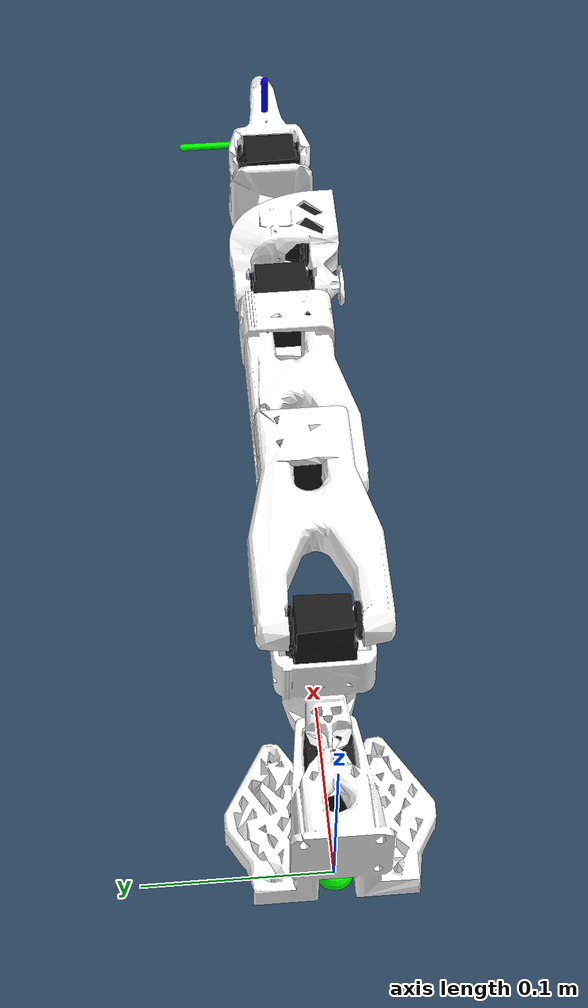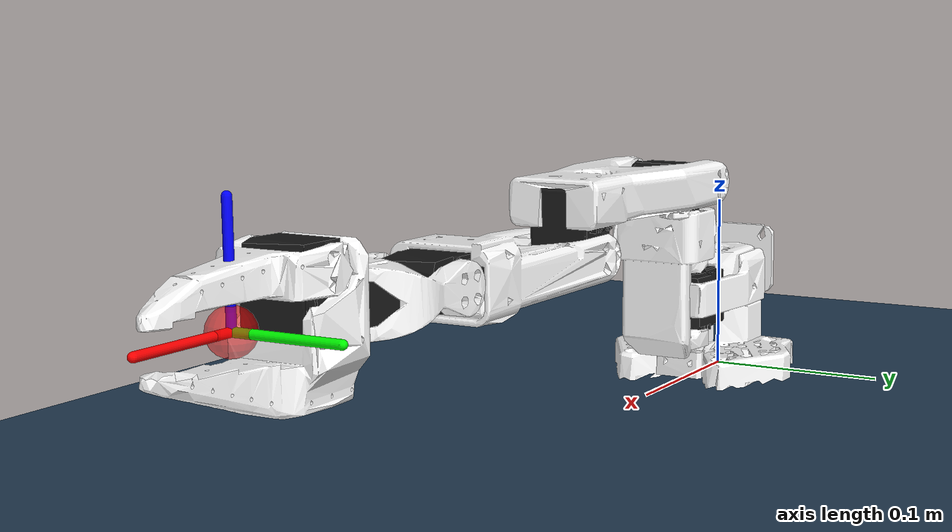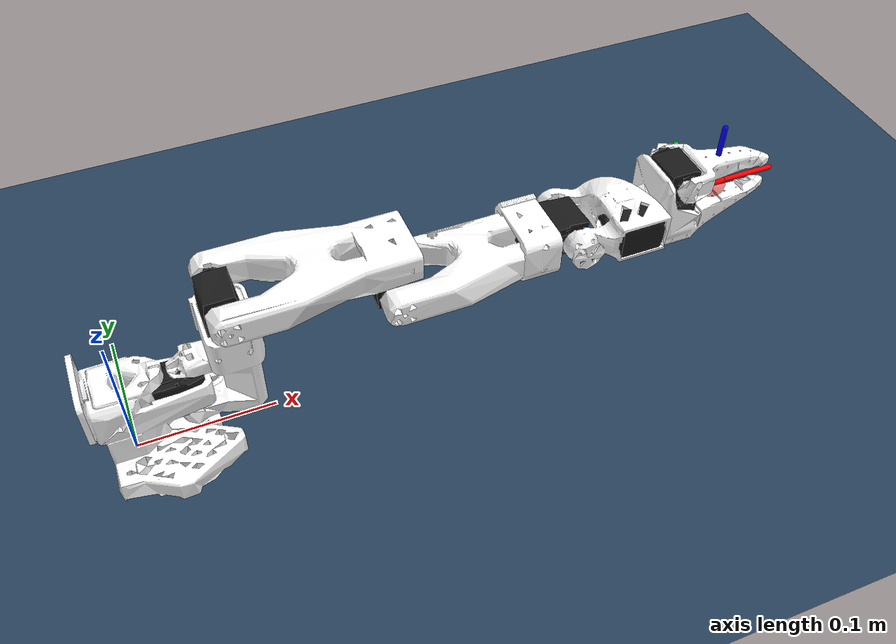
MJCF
<mujoco model="so_arm100 torque_ctrl">
  <option timestep="0.002"/>
  <include file="trs_so_arm100/so_arm100_torque.xml"/>

  <statistic center="0.1 -0.01 0.05" extent="0.5"/>

  <visual>
    <headlight diffuse="0.6 0.6 0.6" ambient="0.3 0.3 0.3" specular="0 0 0"/>
    <rgba haze="0.15 0.25 0.35 1"/>
    <global azimuth="45" elevation="-20"/>
  </visual>

  <asset>
    <texture type="skybox" builtin="gradient" rgb1="0.3 0.5 0.7" rgb2="0 0 0" width="512" height="3072"/>
    <texture type="2d" name="groundplane" builtin="checker" mark="edge" rgb1="0.2 0.3 0.4" rgb2="0.1 0.2 0.3"
      markrgb="0.8 0.8 0.8" width="300" height="300"/>
    <material name="groundplane" texture="groundplane" texuniform="true" texrepeat="5 5" reflectance="0.2"/>
  </asset>

  <worldbody>
    <light pos="0 0 1.5" dir="0 0 -1" directional="true"/>
    <geom name="floor" size="0 0 0.05" type="plane" material="groundplane"/>

    <body name="target" mocap="true">
      <geom type="sphere" size="0.01" rgba="0 1 0 1.0" contype="0" conaffinity="0"/>
    </body>
  </worldbody>
</mujoco>

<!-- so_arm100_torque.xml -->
<mujoco model="so_arm100">
  <compiler angle="radian" meshdir="assets/" />

  <option cone="elliptic" impratio="10" />

  <asset>
    <material name="white" rgba="1 1 1 1" />
    <material name="black" rgba="0.1 0.1 0.1 1" />

    <mesh name="Base" file="Base.stl" />
    <mesh name="Base_Motor" file="Base_Motor.stl" />
    <mesh name="Rotation_Pitch" file="Rotation_Pitch.stl" />
    <mesh name="Rotation_Pitch_Motor" file="Rotation_Pitch_Motor.stl" />
    <mesh name="Upper_Arm" file="Upper_Arm.stl" />
    <mesh name="Upper_Arm_Motor" file="Upper_Arm_Motor.stl" />
    <mesh name="Lower_Arm" file="Lower_Arm.stl" />
    <mesh name="Lower_Arm_Motor" file="Lower_Arm_Motor.stl" />
    <mesh name="Wrist_Pitch_Roll" file="Wrist_Pitch_Roll.stl" />
    <mesh name="Wrist_Pitch_Roll_Motor" file="Wrist_Pitch_Roll_Motor.stl" />
    <mesh name="Fixed_Jaw" file="Fixed_Jaw.stl" />
    <mesh name="Fixed_Jaw_Motor" file="Fixed_Jaw_Motor.stl" />
    <mesh name="Fixed_Jaw_Collision_1" file="Fixed_Jaw_Collision_1.stl" />
    <mesh name="Fixed_Jaw_Collision_2" file="Fixed_Jaw_Collision_2.stl" />
    <mesh name="Moving_Jaw" file="Moving_Jaw.stl" />
    <mesh name="Moving_Jaw_Collision_1" file="Moving_Jaw_Collision_1.stl" />
    <mesh name="Moving_Jaw_Collision_2" file="Moving_Jaw_Collision_2.stl" />
    <mesh name="Moving_Jaw_Collision_3" file="Moving_Jaw_Collision_3.stl" />
  </asset>

  <default>
    <default class="so_arm100">
      <joint frictionloss="0.1" armature="0.1" />
      <position kp="50" dampratio="1" forcerange="-3.5 3.5" />
      <default class="Rotation">
        <joint axis="0 1 0" range="-1.92 1.92" />
      </default>
      <default class="Pitch">
        <joint axis="1 0 0" range="-3.32 0.174" />
      </default>
      <default class="Elbow">
        <joint axis="1 0 0" range="-0.174 3.14" />
      </default>
      <default class="Wrist_Pitch">
        <joint axis="1 0 0" range="-1.66 1.66" />
      </default>
      <default class="Wrist_Roll">
        <joint axis="0 1 0" range="-2.79 2.79" />
      </default>
      <default class="Jaw">
        <joint axis="0 0 1" range="-0.174 1.75" />
      </default>
      <default class="visual">
        <geom type="mesh" contype="0" conaffinity="0" density="0" group="2" material="white" />
        <default class="motor_visual">
          <geom material="black" />
        </default>
      </default>
      <default class="collision">
        <geom group="3" type="mesh" material="white" />
        <default class="finger_collision">
          <geom type="box" solimp="2 1 0.01" solref="0.01 1" friction="1 0.005 0.0001" />
        </default>
      </default>
    </default>
  </default>

  <worldbody>
    <body name="Base" childclass="so_arm100" pos="0 0 0" euler="0 0 1.5708">
      <geom type="mesh" mesh="Base" class="visual" />
      <geom type="mesh" mesh="Base_Motor" class="motor_visual" />
      <geom type="mesh" mesh="Base" class="collision" />
      <body name="Rotation_Pitch" pos="0 -0.0452 0.0165" quat="0.707105 0.707108 0 0">
        <inertial pos="-9.07886e-05 0.0590972 0.031089" quat="0.363978 0.441169 -0.623108 0.533504"
          mass="0.119226"
          diaginertia="5.94278e-05 5.89975e-05 3.13712e-05" />
        <joint name="Rotation" class="Rotation" />
        <geom type="mesh" mesh="Rotation_Pitch" class="visual" />
        <geom type="mesh" mesh="Rotation_Pitch_Motor" class="motor_visual" />
        <geom type="mesh" mesh="Rotation_Pitch" class="collision" />
        <body name="Upper_Arm" pos="0 0.1025 0.0306" euler="1.57079 0 0">
          <inertial pos="-1.72052e-05 0.0701802 0.00310545"
            quat="0.50104 0.498994 -0.493562 0.50632" mass="0.162409"
            diaginertia="0.000213312 0.000167164 7.01522e-05" />
          <joint name="Pitch" class="Pitch" />
          <geom type="mesh" mesh="Upper_Arm" class="visual" />
          <geom type="mesh" mesh="Upper_Arm_Motor" class="motor_visual" />
          <geom type="mesh" mesh="Upper_Arm" class="collision" />
          <body name="Lower_Arm" pos="0 0.11257 0.028" euler="-1.57079 0 0">
            <inertial pos="-0.00339604 0.00137796 0.0768007"
              quat="0.701995 0.0787996 0.0645626 0.704859"
              mass="0.147968" diaginertia="0.000138803 0.000107748 4.84242e-05" />
            <joint name="Elbow" class="Elbow" />
            <geom type="mesh" mesh="Lower_Arm" class="visual" />
            <geom type="mesh" mesh="Lower_Arm_Motor" class="motor_visual" />
            <geom type="mesh" mesh="Lower_Arm" class="collision" />
            <body name="Wrist_Pitch_Roll" pos="0 0.0052 0.1349" euler="-1.57079 0 0">
              <inertial pos="-0.00852653 -0.0352279 -2.34622e-05"
                quat="-0.0522806 0.705235 0.0549524 0.704905"
                mass="0.0661321" diaginertia="3.45403e-05 2.39041e-05 1.94704e-05" />
              <joint name="Wrist_Pitch" class="Wrist_Pitch" />
              <geom type="mesh" mesh="Wrist_Pitch_Roll" class="visual" />
              <geom type="mesh" mesh="Wrist_Pitch_Roll_Motor" class="motor_visual" />
              <geom type="mesh" mesh="Wrist_Pitch_Roll" class="collision" />
              <body name="Fixed_Jaw" pos="0 -0.0601 0" euler="0 1.57079 0">
                <inertial pos="0.00552377 -0.0280167 0.000483583"
                  quat="0.41836 0.620891 -0.350644 0.562599"
                  mass="0.0929859" diaginertia="5.03136e-05 4.64098e-05 2.72961e-05" />
                <joint name="Wrist_Roll" class="Wrist_Roll" />
                <geom type="mesh" mesh="Fixed_Jaw" class="visual" />
                <geom type="mesh" mesh="Fixed_Jaw_Motor" class="motor_visual" />
                <geom type="mesh" mesh="Fixed_Jaw_Collision_1" class="collision" />
                <geom type="mesh" mesh="Fixed_Jaw_Collision_2" class="collision" />
                <geom class="finger_collision" name="fixed_jaw_pad_1" size="0.001 0.005 0.004"
                  pos="0.0089 -0.1014 0" />
                <geom class="finger_collision" name="fixed_jaw_pad_2" size="0.001 0.005 0.006"
                  pos="0.0109 -0.0914 0" />
                <geom class="finger_collision" name="fixed_jaw_pad_3" size="0.001 0.01 0.007"
                  pos="0.0126 -0.0768 0" />
                <geom class="finger_collision" name="fixed_jaw_pad_4" size="0.001 0.01 0.008"
                  pos="0.0143 -0.0572 0" />
                <body name="vx300s_left/camera_focus" pos="0.0 -.06 0">
                  <site pos="0 0 0" size="0.01" type="sphere" name="left_cam_focus"
                    rgba="0 0 1 0" />
                  <!-- EE frame rotated -90 deg about Z then -90 deg about X -->
                  <body name="ee_frame" pos="0 0 0" quat="0.5 0.5 -0.5 -0.5">
                    <site name="ee_site" pos="0 0 0" size="0.01" type="sphere" rgba="1 0 0 0.5" />
                    <geom name="ee_x_axis" type="capsule" fromto="0 0 0 0.05 0 0" size="0.002" rgba="1 0 0 1" contype="0" conaffinity="0" />
                    <geom name="ee_y_axis" type="capsule" fromto="0 0 0 0 0.05 0" size="0.002" rgba="0 1 0 1" contype="0" conaffinity="0" />
                    <geom name="ee_z_axis" type="capsule" fromto="0 0 0 0 0 0.05" size="0.002" rgba="0 0 1 1" contype="0" conaffinity="0" />
                  </body>
                </body>
                <camera name="left_wrist" pos="0 .0 0.55" fovy="20" mode="targetbody" target="vx300s_left/camera_focus"
                   />
                <body name="Moving_Jaw" pos="-0.0202 -0.0244 0"
                  quat="1.34924e-11 -3.67321e-06 1 -3.67321e-06">
                  <inertial pos="-0.00161745 -0.0303473 0.000449646"
                    quat="0.696562 0.716737 -0.0239844 -0.0227026"
                    mass="0.0202444" diaginertia="1.11265e-05 8.99651e-06 2.99548e-06" />
                  <joint name="Jaw" class="Jaw" />

                  <geom type="mesh" mesh="Moving_Jaw" class="visual" />
                  <geom type="mesh" mesh="Moving_Jaw_Collision_1" class="collision" />
                  <geom type="mesh" mesh="Moving_Jaw_Collision_2" class="collision" />
                  <geom type="mesh" mesh="Moving_Jaw_Collision_3" class="collision" />
                  <geom class="finger_collision" name="moving_jaw_pad_1" size="0.001 0.005 0.004"
                    pos="-0.0113 -0.077 0" />
                  <geom class="finger_collision" name="moving_jaw_pad_2" size="0.001 0.005 0.006"
                    pos="-0.0093 -0.067 0" />
                  <geom class="finger_collision" name="moving_jaw_pad_3" size="0.001 0.01 0.006"
                    pos="-0.0073 -0.055 0" />
                  <geom class="finger_collision" name="moving_jaw_pad_4" size="0.001 0.01 0.008"
                    pos="-0.0073 -0.035 0" />
                </body>
              </body>
            </body>
          </body>
        </body>
      </body>
    </body>
  </worldbody>

  <actuator>
    <motor name="Rotation"     joint="Rotation"     gear="50" ctrlrange="-100 100"/>
    <motor name="Pitch"        joint="Pitch"        gear="50" ctrlrange="-100 100"/>
    <motor name="Elbow"        joint="Elbow"        gear="50" ctrlrange="-100 100"/>
    <motor name="Wrist_Pitch"  joint="Wrist_Pitch"  gear="50" ctrlrange="-100 100"/>
    <motor name="Wrist_Roll"   joint="Wrist_Roll"   gear="50" ctrlrange="-100 100"/>
    <motor name="Jaw"          joint="Jaw"          gear="50" ctrlrange="-100 100"/>
  </actuator>

  <contact>
    <exclude body1="Base" body2="Rotation_Pitch" />
  </contact>

</mujoco>
